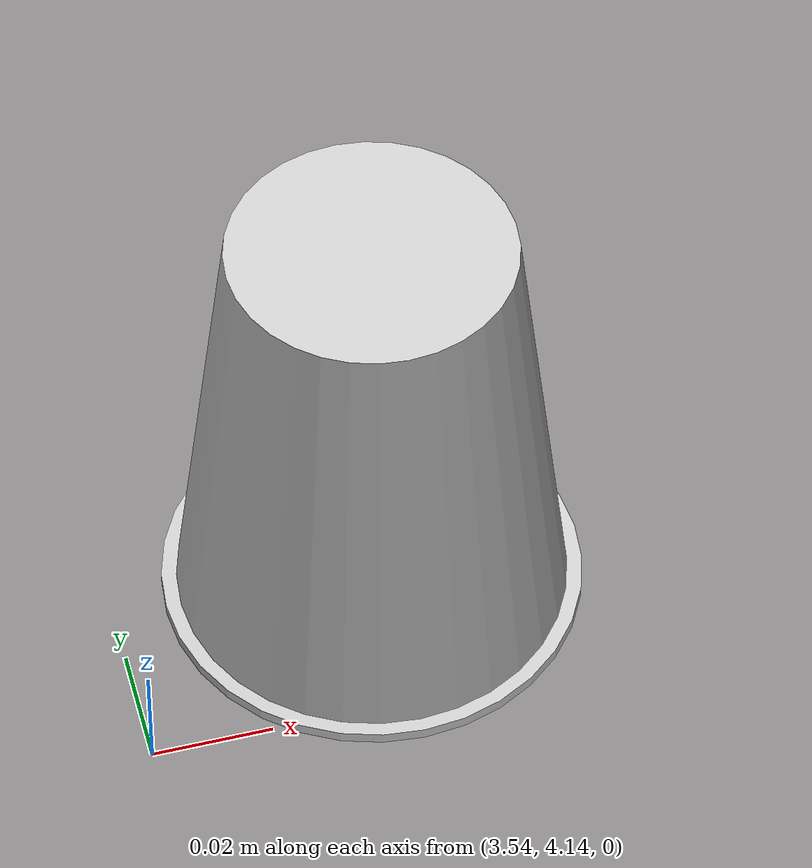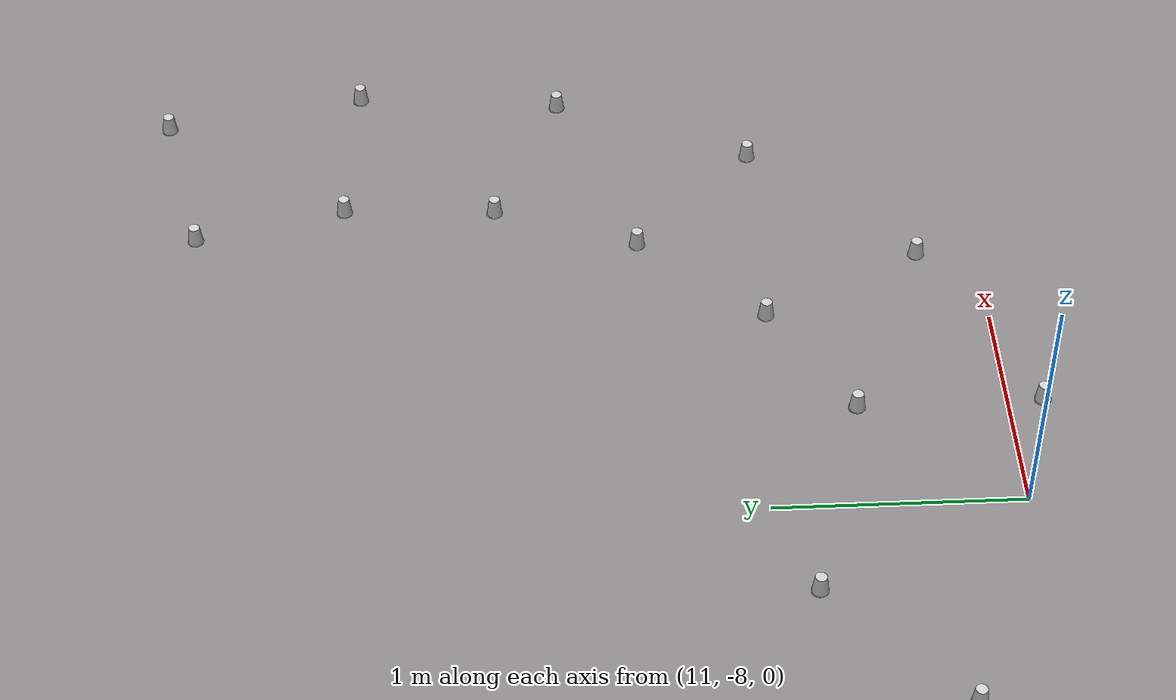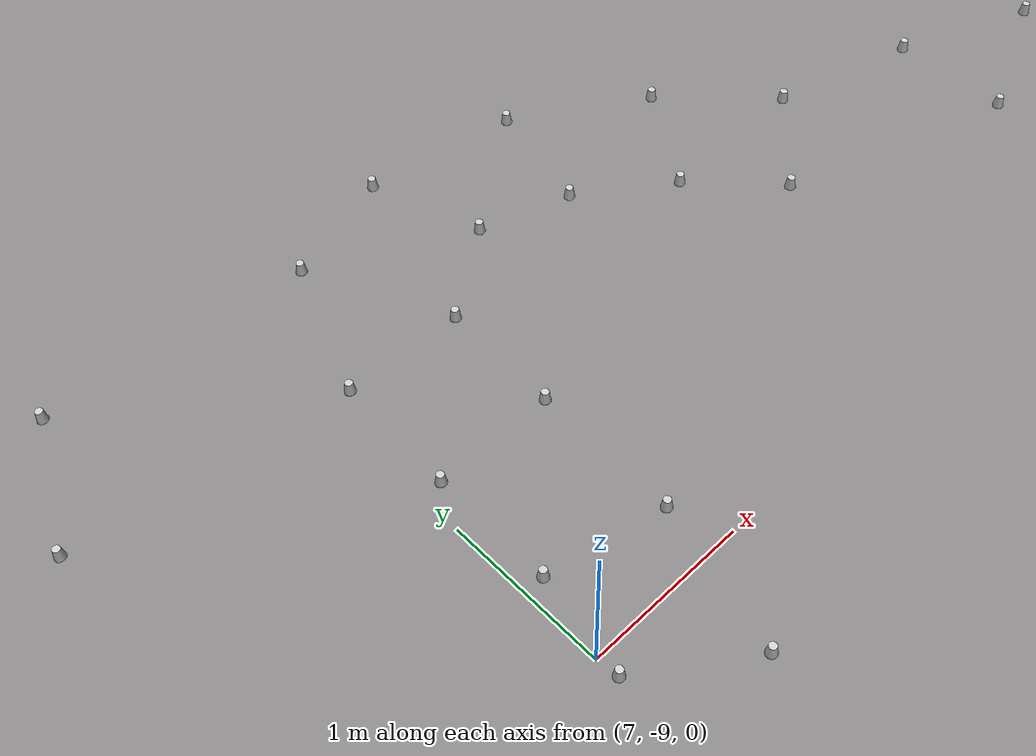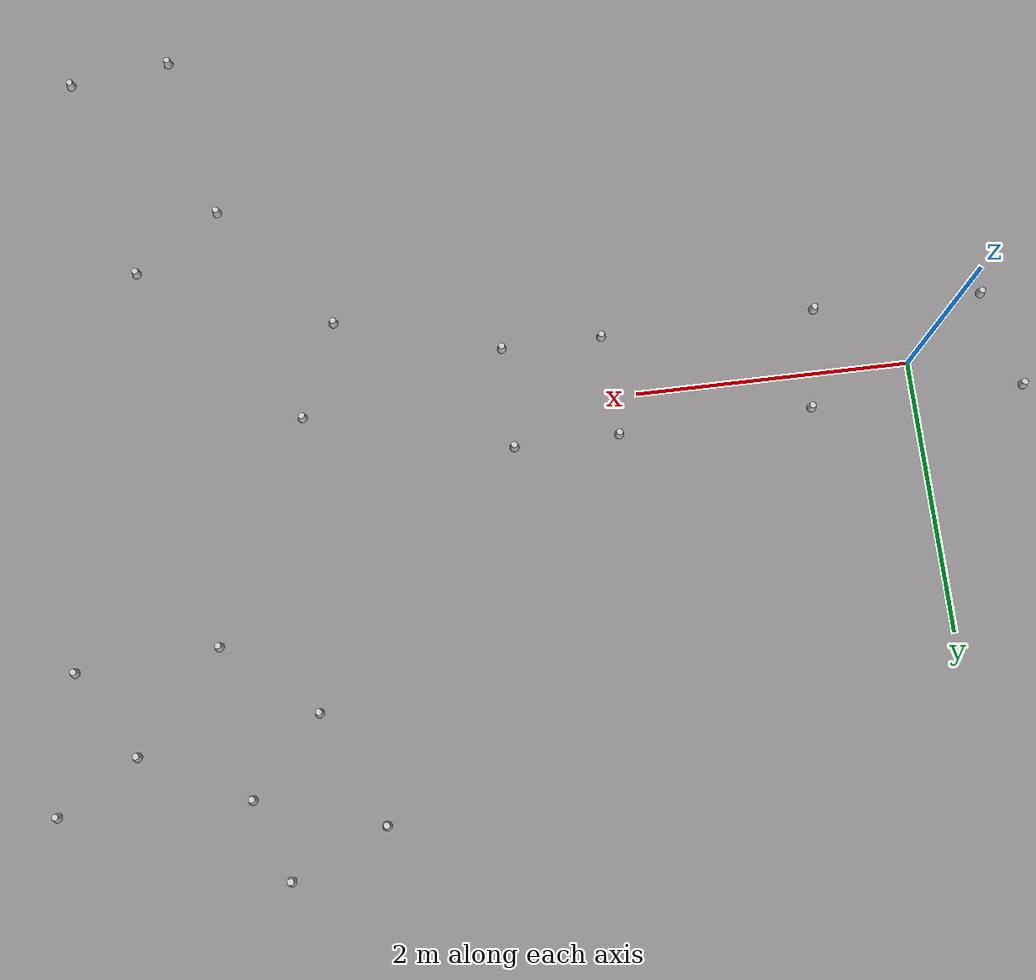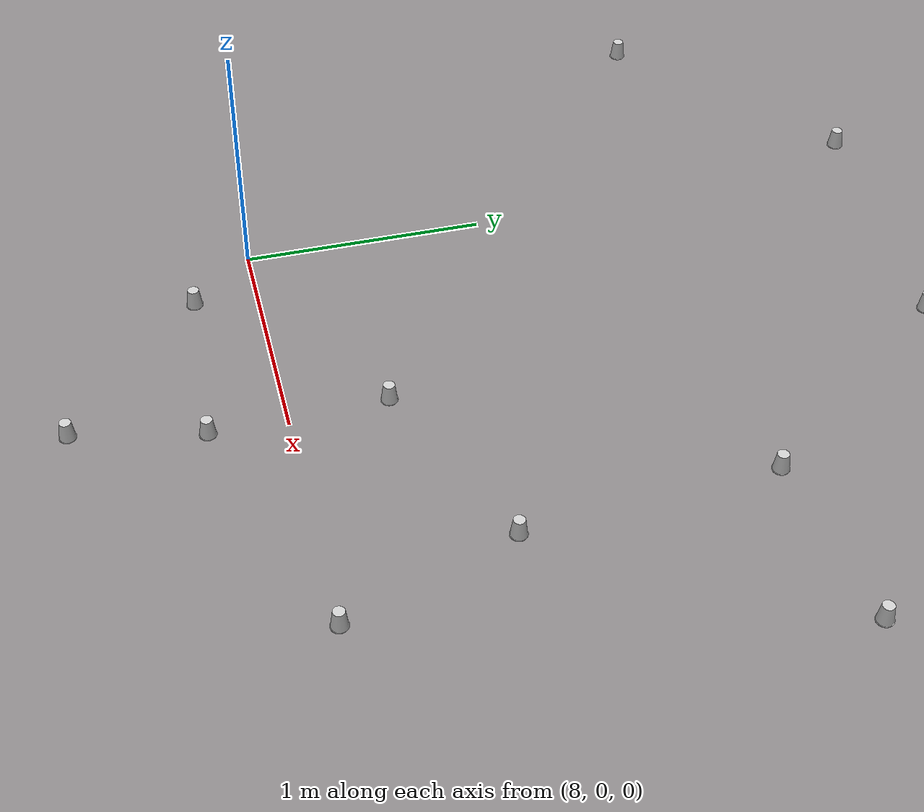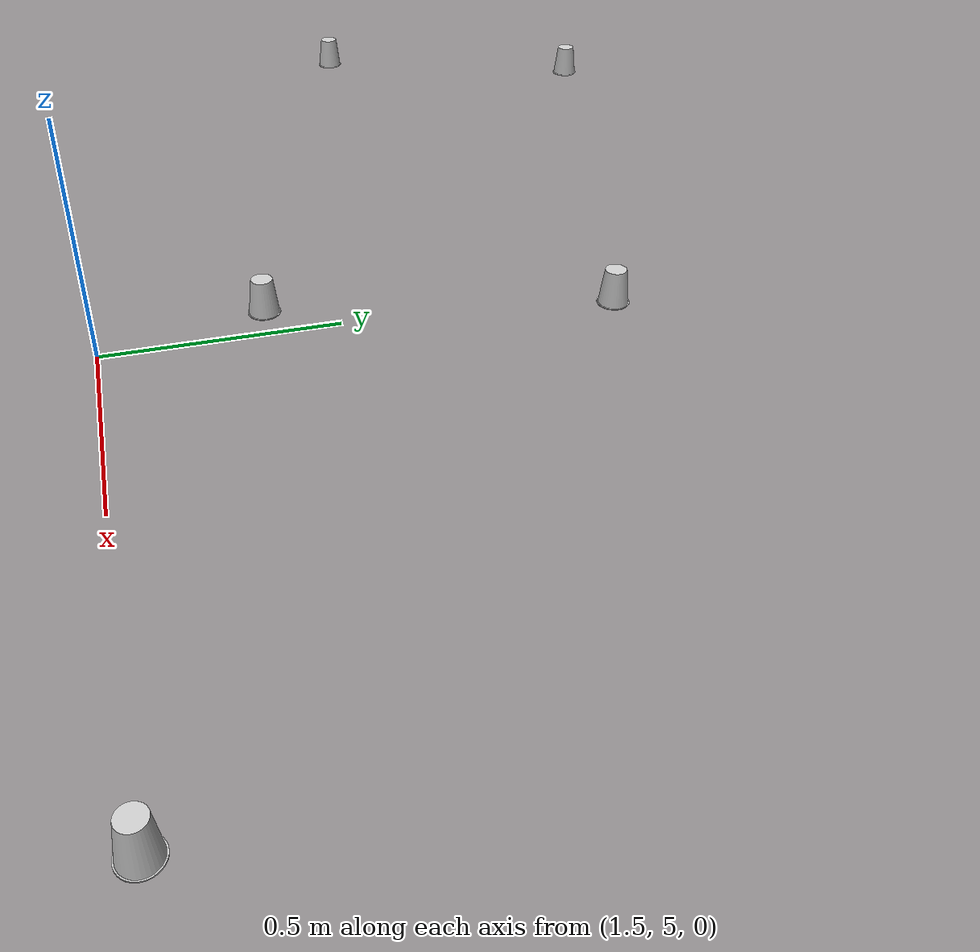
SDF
<?xml version='1.0' encoding='UTF-8'?>
<sdf version="1.4">
  <model name="some track">
    <include>
      <uri>model://cone_yellow</uri>
      <pose>0.6230738627609084 -0.4892391402775522 0 0 0 0</pose>
      <name>cone_right_0</name>
    </include>
    <include>
      <uri>model://cone_yellow</uri>
      <pose>2.202269736699362 -0.4658757220129881 0 0 0 0</pose>
      <name>cone_right_1</name>
    </include>
    <include>
      <uri>model://cone_yellow</uri>
      <pose>2.937782943650109 -0.4615621740846527 0 0 0 0</pose>
      <name>cone_right_2</name>
    </include>
    <include>
      <uri>model://cone_yellow</uri>
      <pose>4.144836507847344 -0.8008363859545389 0 0 0 0</pose>
      <name>cone_right_3</name>
    </include>
    <include>
      <uri>model://cone_yellow</uri>
      <pose>4.925702661753283 -1.763638164769042 0 0 0 0</pose>
      <name>cone_right_4</name>
    </include>
    <include>
      <uri>model://cone_yellow</uri>
      <pose>5.195959492534143 -3.012146450356114 0 0 0 0</pose>
      <name>cone_right_5</name>
    </include>
    <include>
      <uri>model://cone_yellow</uri>
      <pose>5.254510503743941 -4.432168716196087 0 0 0 0</pose>
      <name>cone_right_6</name>
    </include>
    <include>
      <uri>model://cone_yellow</uri>
      <pose>5.123912583566935 -5.7812538911931375 0 0 0 0</pose>
      <name>cone_right_7</name>
    </include>
    <include>
      <uri>model://cone_yellow</uri>
      <pose>4.805310816957061 -6.353292566550683 0 0 0 0</pose>
      <name>cone_right_8</name>
    </include>
    <include>
      <uri>model://cone_yellow</uri>
      <pose>3.812637903631171 -6.769954809309332 0 0 0 0</pose>
      <name>cone_right_9</name>
    </include>
    <include>
      <uri>model://cone_yellow</uri>
      <pose>2.355943061150946 -7.144602990458556 0 0 0 0</pose>
      <name>cone_right_10</name>
    </include>
    <include>
      <uri>model://cone_yellow</uri>
      <pose>1.8053873534963958 -7.928177038982701 0 0 0 0</pose>
      <name>cone_right_11</name>
    </include>
    <include>
      <uri>model://cone_yellow</uri>
      <pose>1.6723524219155603 -8.839591155230428 0 0 0 0</pose>
      <name>cone_right_12</name>
    </include>
    <include>
      <uri>model://cone_yellow</uri>
      <pose>2.4975612584245117 -10.415792246065687 0 0 0 0</pose>
      <name>cone_right_13</name>
    </include>
    <include>
      <uri>model://cone_yellow</uri>
      <pose>3.217269984530267 -10.910741960504314 0 0 0 0</pose>
      <name>cone_right_14</name>
    </include>
    <include>
      <uri>model://cone_yellow</uri>
      <pose>4.852156665362608 -11.194541851537517 0 0 0 0</pose>
      <name>cone_right_15</name>
    </include>
    <include>
      <uri>model://cone_yellow</uri>
      <pose>6.43665043580799 -10.72394882883671 0 0 0 0</pose>
      <name>cone_right_16</name>
    </include>
    <include>
      <uri>model://cone_yellow</uri>
      <pose>7.6292709453577725 -9.56930546061826 0 0 0 0</pose>
      <name>cone_right_17</name>
    </include>
    <include>
      <uri>model://cone_yellow</uri>
      <pose>7.859569201512958 -8.662960394948382 0 0 0 0</pose>
      <name>cone_right_18</name>
    </include>
    <include>
      <uri>model://cone_yellow</uri>
      <pose>7.8795819308303 -7.740126025805662 0 0 0 0</pose>
      <name>cone_right_19</name>
    </include>
    <include>
      <uri>model://cone_yellow</uri>
      <pose>7.910245829930488 -6.97756109475669 0 0 0 0</pose>
      <name>cone_right_20</name>
    </include>
    <include>
      <uri>model://cone_yellow</uri>
      <pose>8.451359468047297 -6.590894951255204 0 0 0 0</pose>
      <name>cone_right_21</name>
    </include>
    <include>
      <uri>model://cone_yellow</uri>
      <pose>9.024993469463283 -6.772277519087571 0 0 0 0</pose>
      <name>cone_right_22</name>
    </include>
    <include>
      <uri>model://cone_yellow</uri>
      <pose>9.585284207056874 -7.166948275630454 0 0 0 0</pose>
      <name>cone_right_23</name>
    </include>
    <include>
      <uri>model://cone_yellow</uri>
      <pose>10.043367838455373 -7.661002232008452 0 0 0 0</pose>
      <name>cone_right_24</name>
    </include>
    <include>
      <uri>model://cone_yellow</uri>
      <pose>11.530788467787492 -8.142013492802654 0 0 0 0</pose>
      <name>cone_right_25</name>
    </include>
    <include>
      <uri>model://cone_yellow</uri>
      <pose>12.394782706871025 -7.745582155684529 0 0 0 0</pose>
      <name>cone_right_26</name>
    </include>
    <include>
      <uri>model://cone_yellow</uri>
      <pose>13.051527868460997 -7.084062504859091 0 0 0 0</pose>
      <name>cone_right_27</name>
    </include>
    <include>
      <uri>model://cone_yellow</uri>
      <pose>13.425783860357962 -6.258950044440608 0 0 0 0</pose>
      <name>cone_right_28</name>
    </include>
    <include>
      <uri>model://cone_yellow</uri>
      <pose>13.513191902232665 -5.378642642756563 0 0 0 0</pose>
      <name>cone_right_29</name>
    </include>
    <include>
      <uri>model://cone_yellow</uri>
      <pose>13.3460150206393 -4.5320332585607135 0 0 0 0</pose>
      <name>cone_right_30</name>
    </include>
    <include>
      <uri>model://cone_yellow</uri>
      <pose>12.377278332649905 -3.1960043275394745 0 0 0 0</pose>
      <name>cone_right_31</name>
    </include>
    <include>
      <uri>model://cone_yellow</uri>
      <pose>11.020664047580711 -2.379972245444683 0 0 0 0</pose>
      <name>cone_right_32</name>
    </include>
    <include>
      <uri>model://cone_yellow</uri>
      <pose>9.730790987217079 -1.7386439682578567 0 0 0 0</pose>
      <name>cone_right_33</name>
    </include>
    <include>
      <uri>model://cone_yellow</uri>
      <pose>8.869567967056462 -0.8304098385344265 0 0 0 0</pose>
      <name>cone_right_34</name>
    </include>
    <include>
      <uri>model://cone_yellow</uri>
      <pose>8.979920606500999 -0.30949973542136666 0 0 0 0</pose>
      <name>cone_right_35</name>
    </include>
    <include>
      <uri>model://cone_yellow</uri>
      <pose>9.988745629035959 -0.0007289809714203233 0 0 0 0</pose>
      <name>cone_right_36</name>
    </include>
    <include>
      <uri>model://cone_yellow</uri>
      <pose>10.403089268717023 1.8246084501282849 0 0 0 0</pose>
      <name>cone_right_37</name>
    </include>
    <include>
      <uri>model://cone_yellow</uri>
      <pose>9.468044629597745 3.205567972570219 0 0 0 0</pose>
      <name>cone_right_38</name>
    </include>
    <include>
      <uri>model://cone_yellow</uri>
      <pose>7.751863148197077 3.488657291244431 0 0 0 0</pose>
      <name>cone_right_39</name>
    </include>
    <include>
      <uri>model://cone_yellow</uri>
      <pose>6.381267295779354 2.5391606329527736 0 0 0 0</pose>
      <name>cone_right_40</name>
    </include>
    <include>
      <uri>model://cone_yellow</uri>
      <pose>5.802291798409244 2.191263600718296 0 0 0 0</pose>
      <name>cone_right_41</name>
    </include>
    <include>
      <uri>model://cone_yellow</uri>
      <pose>5.029267167630801 2.5793399536225707 0 0 0 0</pose>
      <name>cone_right_42</name>
    </include>
    <include>
      <uri>model://cone_yellow</uri>
      <pose>4.811533837932231 3.1608954382955696 0 0 0 0</pose>
      <name>cone_right_43</name>
    </include>
    <include>
      <uri>model://cone_yellow</uri>
      <pose>4.259097884326193 4.4932104079863455 0 0 0 0</pose>
      <name>cone_right_44</name>
    </include>
    <include>
      <uri>model://cone_yellow</uri>
      <pose>3.0947568467780475 5.627596001145519 0 0 0 0</pose>
      <name>cone_right_45</name>
    </include>
    <include>
      <uri>model://cone_yellow</uri>
      <pose>1.5641662559575198 6.085648169504288 0 0 0 0</pose>
      <name>cone_right_46</name>
    </include>
    <include>
      <uri>model://cone_yellow</uri>
      <pose>0.1937540204987751 6.4803888084764125 0 0 0 0</pose>
      <name>cone_right_47</name>
    </include>
    <include>
      <uri>model://cone_yellow</uri>
      <pose>-1.4070918670890888 6.263334313298485 0 0 0 0</pose>
      <name>cone_right_48</name>
    </include>
    <include>
      <uri>model://cone_yellow</uri>
      <pose>-2.075624529610493 4.686902894344538 0 0 0 0</pose>
      <name>cone_right_49</name>
    </include>
    <include>
      <uri>model://cone_yellow</uri>
      <pose>-2.4280172023993027 3.3010401122390958 0 0 0 0</pose>
      <name>cone_right_50</name>
    </include>
    <include>
      <uri>model://cone_yellow</uri>
      <pose>-3.3683449390128684 2.9968370969099203 0 0 0 0</pose>
      <name>cone_right_51</name>
    </include>
    <include>
      <uri>model://cone_yellow</uri>
      <pose>-4.66695087446239 3.165194820219041 0 0 0 0</pose>
      <name>cone_right_52</name>
    </include>
    <include>
      <uri>model://cone_yellow</uri>
      <pose>-6.235201204088725 2.682014964787451 0 0 0 0</pose>
      <name>cone_right_53</name>
    </include>
    <include>
      <uri>model://cone_yellow</uri>
      <pose>-6.243610705248848 0.8664650409299235 0 0 0 0</pose>
      <name>cone_right_54</name>
    </include>
    <include>
      <uri>model://cone_yellow</uri>
      <pose>-4.989751715611409 -0.27838919356269715 0 0 0 0</pose>
      <name>cone_right_55</name>
    </include>
    <include>
      <uri>model://cone_yellow</uri>
      <pose>-3.6195593348347996 -0.880407946770023 0 0 0 0</pose>
      <name>cone_right_56</name>
    </include>
    <include>
      <uri>model://cone_yellow</uri>
      <pose>-1.9920578109364886 -0.9071934855022623 0 0 0 0</pose>
      <name>cone_right_57</name>
    </include>
    <include>
      <uri>model://cone_yellow</uri>
      <pose>-0.6209582604545715 -0.4671747472854243 0 0 0 0</pose>
      <name>cone_right_58</name>
    </include>
    <include>
      <uri>model://cone_yellow</uri>
      <pose>2.030563820780557 -9.715890201910092 0 0 0 0</pose>
      <name>cone_right_59</name>
    </include>
    <include>
      <uri>model://cone_blue</uri>
      <pose>0.7518401869163412 0.2496243340960955 0 0 0 0</pose>
      <name>cone_left_0</name>
    </include>
    <include>
      <uri>model://cone_blue</uri>
      <pose>2.16771508249514 0.28332783902555003 0 0 0 0</pose>
      <name>cone_left_1</name>
    </include>
    <include>
      <uri>model://cone_blue</uri>
      <pose>2.9330813936717877 0.28842308938910477 0 0 0 0</pose>
      <name>cone_left_2</name>
    </include>
    <include>
      <uri>model://cone_blue</uri>
      <pose>4.436275026004214 -0.1097766272255789 0 0 0 0</pose>
      <name>cone_left_3</name>
    </include>
    <include>
      <uri>model://cone_blue</uri>
      <pose>5.554246077916643 -1.3544521752756407 0 0 0 0</pose>
      <name>cone_left_4</name>
    </include>
    <include>
      <uri>model://cone_blue</uri>
      <pose>5.939771016689284 -2.915998561486911 0 0 0 0</pose>
      <name>cone_left_5</name>
    </include>
    <include>
      <uri>model://cone_blue</uri>
      <pose>6.003711245609075 -4.3975529916083795 0 0 0 0</pose>
      <name>cone_left_6</name>
    </include>
    <include>
      <uri>model://cone_blue</uri>
      <pose>5.860385626679649 -5.923054655536281 0 0 0 0</pose>
      <name>cone_left_7</name>
    </include>
    <include>
      <uri>model://cone_blue</uri>
      <pose>5.469277388236666 -6.702073862240697 0 0 0 0</pose>
      <name>cone_left_8</name>
    </include>
    <include>
      <uri>model://cone_blue</uri>
      <pose>3.955504145008281 -7.506221905596255 0 0 0 0</pose>
      <name>cone_left_9</name>
    </include>
    <include>
      <uri>model://cone_blue</uri>
      <pose>2.690034005487043 -7.816081389897149 0 0 0 0</pose>
      <name>cone_left_10</name>
    </include>
    <include>
      <uri>model://cone_blue</uri>
      <pose>2.443382058627827 -8.322464695680521 0 0 0 0</pose>
      <name>cone_left_11</name>
    </include>
    <include>
      <uri>model://cone_blue</uri>
      <pose>2.41825476099579 -8.917883559425482 0 0 0 0</pose>
      <name>cone_left_12</name>
    </include>
    <include>
      <uri>model://cone_blue</uri>
      <pose>3.0751368507418024 -9.93735057233802 0 0 0 0</pose>
      <name>cone_left_13</name>
    </include>
    <include>
      <uri>model://cone_blue</uri>
      <pose>3.630709764005358 -10.284988375818148 0 0 0 0</pose>
      <name>cone_left_14</name>
    </include>
    <include>
      <uri>model://cone_blue</uri>
      <pose>4.865705932014214 -10.444664249942962 0 0 0 0</pose>
      <name>cone_left_15</name>
    </include>
    <include>
      <uri>model://cone_blue</uri>
      <pose>6.150319344715485 -10.030757292337759 0 0 0 0</pose>
      <name>cone_left_16</name>
    </include>
    <include>
      <uri>model://cone_blue</uri>
      <pose>7.01818042294544 -9.134485528441935 0 0 0 0</pose>
      <name>cone_left_17</name>
    </include>
    <include>
      <uri>model://cone_blue</uri>
      <pose>7.127147820869034 -8.501532636568207 0 0 0 0</pose>
      <name>cone_left_18</name>
    </include>
    <include>
      <uri>model://cone_blue</uri>
      <pose>7.129648138719029 -7.730160713487043 0 0 0 0</pose>
      <name>cone_left_19</name>
    </include>
    <include>
      <uri>model://cone_blue</uri>
      <pose>7.160846181468165 -6.947558313476496 0 0 0 0</pose>
      <name>cone_left_20</name>
    </include>
    <include>
      <uri>model://cone_blue</uri>
      <pose>8.222743792968277 -5.876587683261826 0 0 0 0</pose>
      <name>cone_left_21</name>
    </include>
    <include>
      <uri>model://cone_blue</uri>
      <pose>9.189061610644 -6.0404430808096885 0 0 0 0</pose>
      <name>cone_left_22</name>
    </include>
    <include>
      <uri>model://cone_blue</uri>
      <pose>9.995616178786461 -6.539152390826714 0 0 0 0</pose>
      <name>cone_left_23</name>
    </include>
    <include>
      <uri>model://cone_blue</uri>
      <pose>10.585831148773723 -7.14308953959934 0 0 0 0</pose>
      <name>cone_left_24</name>
    </include>
    <include>
      <uri>model://cone_blue</uri>
      <pose>11.51731459803172 -7.3921345326805525 0 0 0 0</pose>
      <name>cone_left_25</name>
    </include>
    <include>
      <uri>model://cone_blue</uri>
      <pose>12.055271752591844 -7.076827857063249 0 0 0 0</pose>
      <name>cone_left_26</name>
    </include>
    <include>
      <uri>model://cone_blue</uri>
      <pose>12.507069661407964 -6.568247362804696 0 0 0 0</pose>
      <name>cone_left_27</name>
    </include>
    <include>
      <uri>model://cone_blue</uri>
      <pose>12.734826815875392 -5.967268089770947 0 0 0 0</pose>
      <name>cone_left_28</name>
    </include>
    <include>
      <uri>model://cone_blue</uri>
      <pose>12.765422163090848 -5.320846300106015 0 0 0 0</pose>
      <name>cone_left_29</name>
    </include>
    <include>
      <uri>model://cone_blue</uri>
      <pose>12.612986192232977 -4.690679836605285 0 0 0 0</pose>
      <name>cone_left_30</name>
    </include>
    <include>
      <uri>model://cone_blue</uri>
      <pose>11.847701960518172 -3.7270870575164454 0 0 0 0</pose>
      <name>cone_left_31</name>
    </include>
    <include>
      <uri>model://cone_blue</uri>
      <pose>10.67471874398345 -3.045420851213001 0 0 0 0</pose>
      <name>cone_left_32</name>
    </include>
    <include>
      <uri>model://cone_blue</uri>
      <pose>9.384322828086242 -2.4038204972398187 0 0 0 0</pose>
      <name>cone_left_33</name>
    </include>
    <include>
      <uri>model://cone_blue</uri>
      <pose>8.238752052953558 -1.2360837007865066 0 0 0 0</pose>
      <name>cone_left_34</name>
    </include>
    <include>
      <uri>model://cone_blue</uri>
      <pose>8.231694865132896 -0.2579416133245114 0 0 0 0</pose>
      <name>cone_left_35</name>
    </include>
    <include>
      <uri>model://cone_blue</uri>
      <pose>9.737254240036327 0.7058487438819994 0 0 0 0</pose>
      <name>cone_left_36</name>
    </include>
    <include>
      <uri>model://cone_blue</uri>
      <pose>9.657576409407715 1.7426903409920365 0 0 0 0</pose>
      <name>cone_left_37</name>
    </include>
    <include>
      <uri>model://cone_blue</uri>
      <pose>8.957166525150573 2.656474572139597 0 0 0 0</pose>
      <name>cone_left_38</name>
    </include>
    <include>
      <uri>model://cone_blue</uri>
      <pose>7.823464875696721 2.742082986423359 0 0 0 0</pose>
      <name>cone_left_39</name>
    </include>
    <include>
      <uri>model://cone_blue</uri>
      <pose>6.89931993526532 1.99683097055026 0 0 0 0</pose>
      <name>cone_left_40</name>
    </include>
    <include>
      <uri>model://cone_blue</uri>
      <pose>6.196343365236824 1.5531230498357105 0 0 0 0</pose>
      <name>cone_left_41</name>
    </include>
    <include>
      <uri>model://cone_blue</uri>
      <pose>4.513458446089521 2.0348756639010595 0 0 0 0</pose>
      <name>cone_left_42</name>
    </include>
    <include>
      <uri>model://cone_blue</uri>
      <pose>4.122850993171248 2.863883756148353 0 0 0 0</pose>
      <name>cone_left_43</name>
    </include>
    <include>
      <uri>model://cone_blue</uri>
      <pose>3.583542632127085 4.167441930035825 0 0 0 0</pose>
      <name>cone_left_44</name>
    </include>
    <include>
      <uri>model://cone_blue</uri>
      <pose>2.659156068340503 5.017061840082762 0 0 0 0</pose>
      <name>cone_left_45</name>
    </include>
    <include>
      <uri>model://cone_blue</uri>
      <pose>1.4121973759490736 5.351205891643748 0 0 0 0</pose>
      <name>cone_left_46</name>
    </include>
    <include>
      <uri>model://cone_blue</uri>
      <pose>-0.06651254439556542 5.776996090858367 0 0 0 0</pose>
      <name>cone_left_47</name>
    </include>
    <include>
      <uri>model://cone_blue</uri>
      <pose>-0.9958395964409336 5.636140906216798 0 0 0 0</pose>
      <name>cone_left_48</name>
    </include>
    <include>
      <uri>model://cone_blue</uri>
      <pose>-1.3512030405192519 4.492703238982257 0 0 0 0</pose>
      <name>cone_left_49</name>
    </include>
    <include>
      <uri>model://cone_blue</uri>
      <pose>-1.7135885679859018 3.072803992551166 0 0 0 0</pose>
      <name>cone_left_50</name>
    </include>
    <include>
      <uri>model://cone_blue</uri>
      <pose>-3.276046348805948 2.2525381178391335 0 0 0 0</pose>
      <name>cone_left_51</name>
    </include>
    <include>
      <uri>model://cone_blue</uri>
      <pose>-4.809082749587381 2.428785606484277 0 0 0 0</pose>
      <name>cone_left_52</name>
    </include>
    <include>
      <uri>model://cone_blue</uri>
      <pose>-5.753028210573323 2.1075506888534323 0 0 0 0</pose>
      <name>cone_left_53</name>
    </include>
    <include>
      <uri>model://cone_blue</uri>
      <pose>-5.523980560874339 1.0777289879429477 0 0 0 0</pose>
      <name>cone_left_54</name>
    </include>
    <include>
      <uri>model://cone_blue</uri>
      <pose>-4.603438664983151 0.36446555435030464 0 0 0 0</pose>
      <name>cone_left_55</name>
    </include>
    <include>
      <uri>model://cone_blue</uri>
      <pose>-3.319404004399936 -0.19308940518138096 0 0 0 0</pose>
      <name>cone_left_56</name>
    </include>
    <include>
      <uri>model://cone_blue</uri>
      <pose>-2.1945192948620678 -0.18503744452036175 0 0 0 0</pose>
      <name>cone_left_57</name>
    </include>
    <include>
      <uri>model://cone_blue</uri>
      <pose>-0.8059840316311845 0.25964398114725695 0 0 0 0</pose>
      <name>cone_left_58</name>
    </include>
    <include>
      <uri>model://cone_blue</uri>
      <pose>7.498200741530546 -6.0941648911569075 0 0 0 0</pose>
      <name>cone_left_59</name>
    </include>
    <include>
      <uri>model://cone_blue</uri>
      <pose>8.958573850705228 0.40157469845205185 0 0 0 0</pose>
      <name>cone_left_60</name>
    </include>
    <include>
      <uri>model://cone_blue</uri>
      <pose>5.1732867517244685 1.488092291678008 0 0 0 0</pose>
      <name>cone_left_61</name>
    </include>
    <include>
      <uri>model://cone_blue</uri>
      <pose>-2.3505555067434685 2.375999142056216 0 0 0 0</pose>
      <name>cone_left_62</name>
    </include>
  </model>
</sdf>

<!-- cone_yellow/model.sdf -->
<sdf version='1.4'>
  <model name="cone_yellow">
    <link name="link">
    <collision name="collision"><geometry><box><size> 0.05 0.05 0.01</size>
             </box></geometry></collision>
      <visual name="visual">
        <geometry>
          <mesh>
            <uri>model://cup.dae</uri>
            <scale>1 1 1</scale>
          </mesh>
        </geometry>
        <material>
            <script>
              <uri>model://cone_yellow/materials/scripts</uri>
              <uri>model://cone_yellow/materials/textures</uri>
              <name>cone_yellow/Image</name>
            </script>
        </material>
      </visual>
    </link>
  </model>
</sdf>

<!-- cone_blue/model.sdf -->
<sdf version='1.4'>
  <model name="cone_blue">
    <link name="link">
    <collision name="collision"><geometry><box><size> 0.05 0.05 0.01</size>
             </box></geometry></collision>
      <visual name="visual">
        <geometry>
          <mesh>
            <uri>model://cup.dae</uri>
            <scale>1 1 1</scale>
          </mesh>
        </geometry>
        <material>
            <script>
              <uri>model://cone_blue/materials/scripts</uri>
              <uri>model://cone_blue/materials/textures</uri>
              <name>cone_blue/Image</name>
            </script>
        </material>
      </visual>
    </link>
  </model>
</sdf>
